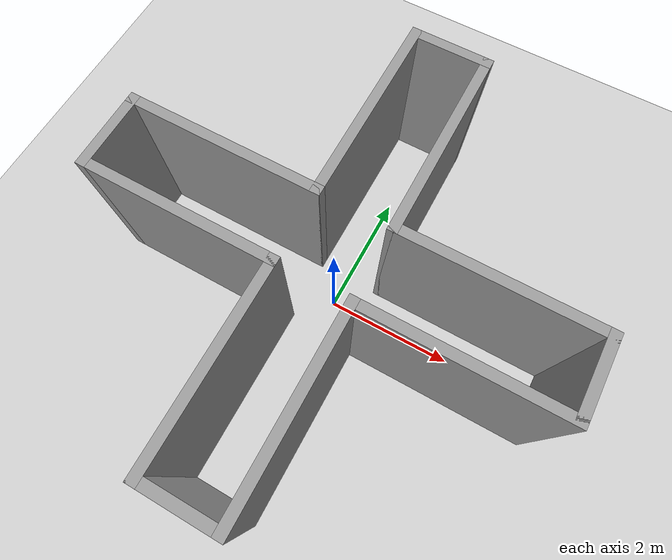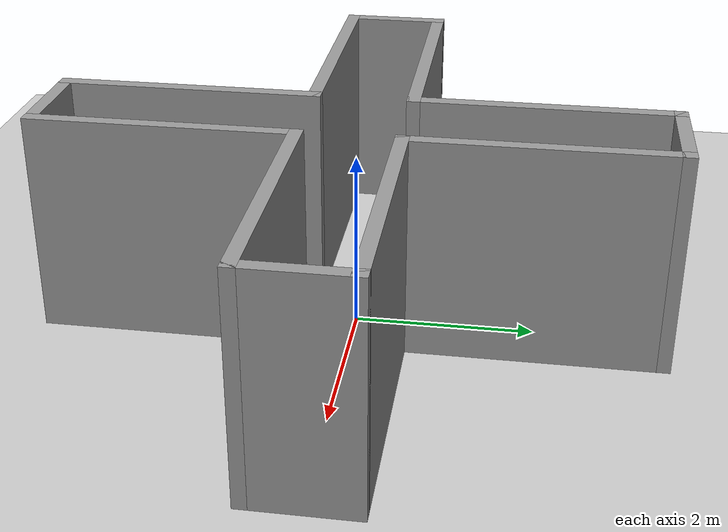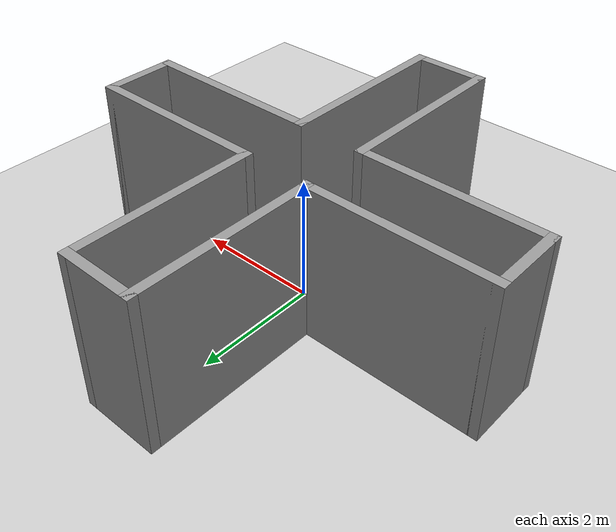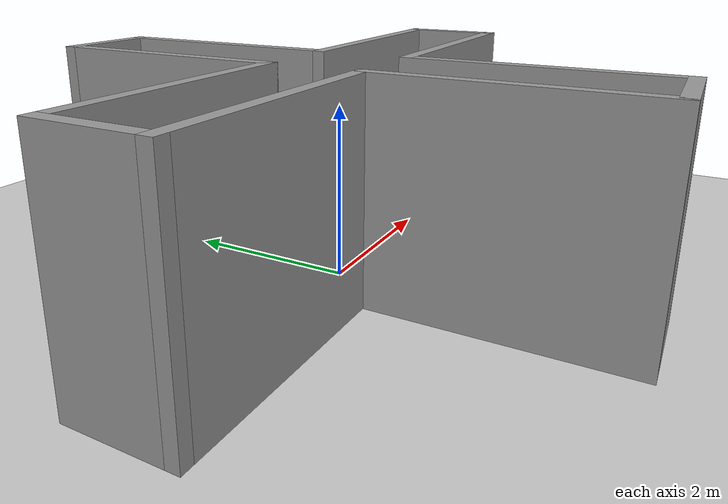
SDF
<sdf version="1.6">
 <world name="default">
  <light name="sun" type="directional">
   <pose>0 0 10 0 -0 0</pose>
   <diffuse>0.8 0.8 0.8 1</diffuse>
   <specular>0.2 0.2 0.2 1</specular>
   <attenuation>
    <range>1000</range>
    <constant>0.9</constant>
    <linear>0.01</linear>
    <quadratic>0.001</quadratic>
   </attenuation>
   <direction>-0.5 0.1 -0.9</direction>
  </light>
  <model name="ground_plane">
   <static>1</static>
   <link name="link">
    <collision name="collision">
     <geometry><plane><normal>0 0 1</normal><size>100 100</size></plane></geometry>
     <surface>
      <contact><collide_bitmask>65535</collide_bitmask></contact>
      <friction><ode><mu>100</mu><mu2>50</mu2></ode></friction>
     </surface>
    </collision>
    <visual name="visual">
     <cast_shadows>0</cast_shadows>
     <geometry><plane><normal>0 0 1</normal><size>100 100</size></plane></geometry>
     <material>
      <script><uri>file://media/materials/scripts/gazebo.material</uri><name>Gazebo/Grey</name></script>
     </material>
    </visual>
   </link>
  </model>
  <gravity>0 0 -9.8</gravity>
  <magnetic_field>6e-06 2.3e-05 -4.2e-05</magnetic_field>
  <atmosphere type="adiabatic"/>
  <physics name="default_physics" default="0" type="ode">
   <max_step_size>0.001</max_step_size>
   <real_time_factor>1</real_time_factor>
   <real_time_update_rate>1000</real_time_update_rate>
  </physics>
  <scene><ambient>0.4 0.4 0.4 1</ambient><background>0.7 0.7 0.7 1</background><shadows>1</shadows></scene>
  <spherical_coordinates>
   <surface_model>EARTH_WGS84</surface_model>
   <latitude_deg>0</latitude_deg>
   <longitude_deg>0</longitude_deg>
   <elevation>0</elevation>
   <heading_deg>0</heading_deg>
  </spherical_coordinates>
  <model name="train_ma_05">
   <link name="Wall_1">
    <collision name="Wall_1_Collision">
     <geometry><box><size>3 0.15 2.5</size></box></geometry>
     <pose>0 0 1.25 0 -0 0</pose>
    </collision>
    <visual name="Wall_1_Visual">
     <pose>0 0 1.25 0 -0 0</pose>
     <geometry><box><size>3 0.15 2.5</size></box></geometry>
     <material>
      <script><uri>file://media/materials/scripts/gazebo.material</uri><name>Gazebo/Grey</name></script>
      <ambient>1 1 1 1</ambient>
     </material>
     <meta><layer>0</layer></meta>
    </visual>
    <pose>-1.975 0.55 0 0 -0 0</pose>
   </link>
   <link name="Wall_10">
    <collision name="Wall_10_Collision">
     <geometry><box><size>3 0.15 2.5</size></box></geometry>
     <pose>0 0 1.25 0 -0 0</pose>
    </collision>
    <visual name="Wall_10_Visual">
     <pose>0 0 1.25 0 -0 0</pose>
     <geometry><box><size>3 0.15 2.5</size></box></geometry>
     <material>
      <script><uri>file://media/materials/scripts/gazebo.material</uri><name>Gazebo/Grey</name></script>
      <ambient>1 1 1 1</ambient>
     </material>
     <meta><layer>0</layer></meta>
    </visual>
    <pose>-0.55 -1.975 0 0 0 -1.5708</pose>
   </link>
   <link name="Wall_11">
    <collision name="Wall_11_Collision">
     <geometry><box><size>1.25 0.15 2.5</size></box></geometry>
     <pose>0 0 1.25 0 -0 0</pose>
    </collision>
    <visual name="Wall_11_Visual">
     <pose>0 0 1.25 0 -0 0</pose>
     <geometry><box><size>1.25 0.15 2.5</size></box></geometry>
     <material>
      <script><uri>file://media/materials/scripts/gazebo.material</uri><name>Gazebo/Grey</name></script>
      <ambient>1 1 1 1</ambient>
     </material>
     <meta><layer>0</layer></meta>
    </visual>
    <pose>0 -3.4 0 0 -0 0</pose>
   </link>
   <link name="Wall_12">
    <collision name="Wall_12_Collision">
     <geometry><box><size>3 0.15 2.5</size></box></geometry>
     <pose>0 0 1.25 0 -0 0</pose>
    </collision>
    <visual name="Wall_12_Visual">
     <pose>0 0 1.25 0 -0 0</pose>
     <geometry><box><size>3 0.15 2.5</size></box></geometry>
     <material>
      <script><uri>file://media/materials/scripts/gazebo.material</uri><name>Gazebo/Grey</name></script>
      <ambient>1 1 1 1</ambient>
     </material>
     <meta><layer>0</layer></meta>
    </visual>
    <pose>0.55 -1.975 0 0 -0 1.5708</pose>
   </link>
   <link name="Wall_14">
    <collision name="Wall_14_Collision">
     <geometry><box><size>3 0.15 2.5</size></box></geometry>
     <pose>0 0 1.25 0 -0 0</pose>
    </collision>
    <visual name="Wall_14_Visual">
     <pose>0 0 1.25 0 -0 0</pose>
     <geometry><box><size>3 0.15 2.5</size></box></geometry>
     <material>
      <script><uri>file://media/materials/scripts/gazebo.material</uri><name>Gazebo/Grey</name></script>
      <ambient>1 1 1 1</ambient>
     </material>
     <meta><layer>0</layer></meta>
    </visual>
    <pose>0.55 1.975 0 0 -0 1.5708</pose>
   </link>
   <link name="Wall_15">
    <collision name="Wall_15_Collision">
     <geometry><box><size>1.25 0.15 2.5</size></box></geometry>
     <pose>0 0 1.25 0 -0 0</pose>
    </collision>
    <visual name="Wall_15_Visual">
     <pose>0 0 1.25 0 -0 0</pose>
     <geometry><box><size>1.25 0.15 2.5</size></box></geometry>
     <material>
      <script><uri>file://media/materials/scripts/gazebo.material</uri><name>Gazebo/Grey</name></script>
      <ambient>1 1 1 1</ambient>
     </material>
     <meta><layer>0</layer></meta>
    </visual>
    <pose>0 3.4 0 0 -0 3.14159</pose>
   </link>
   <link name="Wall_16">
    <collision name="Wall_16_Collision">
     <geometry><box><size>3 0.15 2.5</size></box></geometry>
     <pose>0 0 1.25 0 -0 0</pose>
    </collision>
    <visual name="Wall_16_Visual">
     <pose>0 0 1.25 0 -0 0</pose>
     <geometry><box><size>3 0.15 2.5</size></box></geometry>
     <material>
      <script><uri>file://media/materials/scripts/gazebo.material</uri><name>Gazebo/Grey</name></script>
      <ambient>1 1 1 1</ambient>
     </material>
     <meta><layer>0</layer></meta>
    </visual>
    <pose>-0.55 1.975 0 0 0 -1.5708</pose>
   </link>
   <link name="Wall_3">
    <collision name="Wall_3_Collision">
     <geometry><box><size>3 0.15 2.5</size></box></geometry>
     <pose>0 0 1.25 0 -0 0</pose>
    </collision>
    <visual name="Wall_3_Visual">
     <pose>0 0 1.25 0 -0 0</pose>
     <geometry><box><size>3 0.15 2.5</size></box></geometry>
     <material>
      <script><uri>file://media/materials/scripts/gazebo.material</uri><name>Gazebo/Grey</name></script>
      <ambient>1 1 1 1</ambient>
     </material>
     <meta><layer>0</layer></meta>
    </visual>
    <pose>1.975 0.55 0 0 -0 0</pose>
   </link>
   <link name="Wall_4">
    <collision name="Wall_4_Collision">
     <geometry><box><size>1.25 0.15 2.5</size></box></geometry>
     <pose>0 0 1.25 0 -0 0</pose>
    </collision>
    <visual name="Wall_4_Visual">
     <pose>0 0 1.25 0 -0 0</pose>
     <geometry><box><size>1.25 0.15 2.5</size></box></geometry>
     <material>
      <script><uri>file://media/materials/scripts/gazebo.material</uri><name>Gazebo/Grey</name></script>
      <ambient>1 1 1 1</ambient>
     </material>
     <meta><layer>0</layer></meta>
    </visual>
    <pose>3.4 0 0 0 0 -1.5708</pose>
   </link>
   <link name="Wall_5">
    <collision name="Wall_5_Collision">
     <geometry><box><size>3 0.15 2.5</size></box></geometry>
     <pose>0 0 1.25 0 -0 0</pose>
    </collision>
    <visual name="Wall_5_Visual">
     <pose>0 0 1.25 0 -0 0</pose>
     <geometry><box><size>3 0.15 2.5</size></box></geometry>
     <material>
      <script><uri>file://media/materials/scripts/gazebo.material</uri><name>Gazebo/Grey</name></script>
      <ambient>1 1 1 1</ambient>
     </material>
     <meta><layer>0</layer></meta>
    </visual>
    <pose>1.975 -0.55 0 0 -0 3.14159</pose>
   </link>
   <link name="Wall_7">
    <collision name="Wall_7_Collision">
     <geometry><box><size>3 0.15 2.5</size></box></geometry>
     <pose>0 0 1.25 0 -0 0</pose>
    </collision>
    <visual name="Wall_7_Visual">
     <pose>0 0 1.25 0 -0 0</pose>
     <geometry><box><size>3 0.15 2.5</size></box></geometry>
     <material>
      <script><uri>file://media/materials/scripts/gazebo.material</uri><name>Gazebo/Grey</name></script>
      <ambient>1 1 1 1</ambient>
     </material>
     <meta><layer>0</layer></meta>
    </visual>
    <pose>-1.975 -0.55 0 0 -0 3.14159</pose>
   </link>
   <link name="Wall_8">
    <collision name="Wall_8_Collision">
     <geometry><box><size>1.25 0.15 2.5</size></box></geometry>
     <pose>0 0 1.25 0 -0 0</pose>
    </collision>
    <visual name="Wall_8_Visual">
     <pose>0 0 1.25 0 -0 0</pose>
     <geometry><box><size>1.25 0.15 2.5</size></box></geometry>
     <material>
      <script><uri>file://media/materials/scripts/gazebo.material</uri><name>Gazebo/Grey</name></script>
      <ambient>1 1 1 1</ambient>
     </material>
     <meta><layer>0</layer></meta>
    </visual>
    <pose>-3.4 0 0 0 -0 1.5708</pose>
   </link>
   <static>1</static>
  </model>
 </world>
</sdf>
